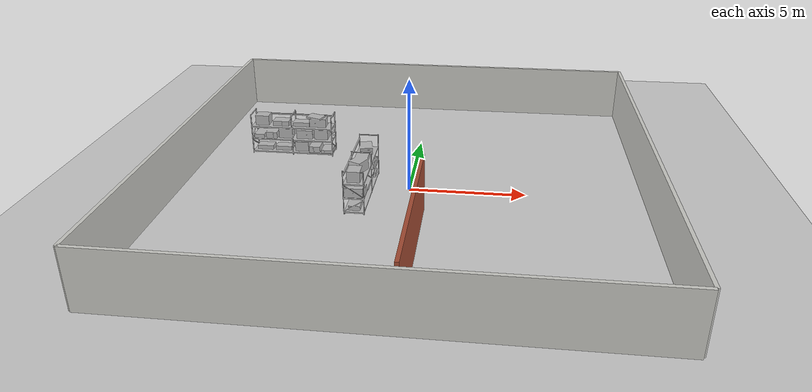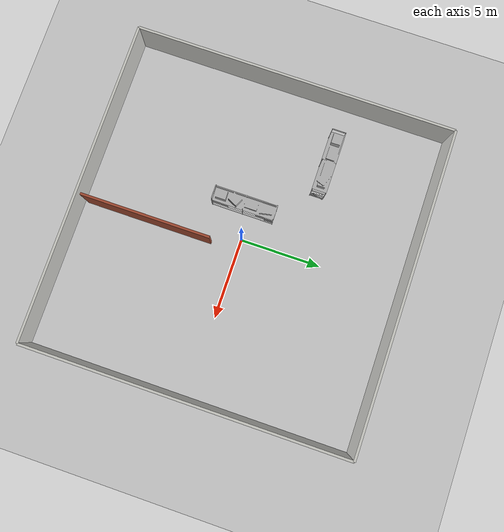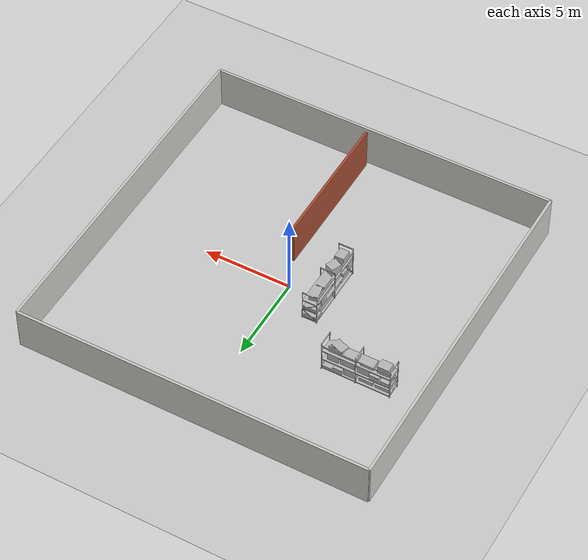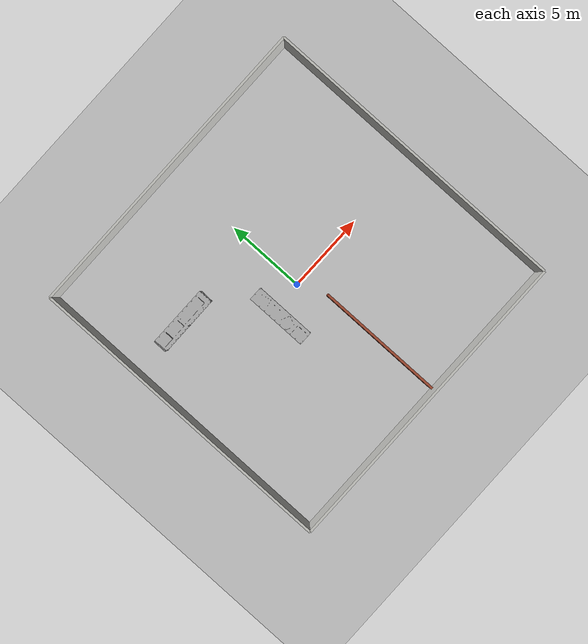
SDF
<sdf version="1.7">
 <world name="default">
  <light name="sun" type="directional">
   <pose>0 0 10 0 -0 0</pose>
   <diffuse>0.8 0.8 0.8 1</diffuse>
   <specular>0.2 0.2 0.2 1</specular>
   <attenuation>
    <range>1000</range>
    <constant>0.9</constant>
    <linear>0.01</linear>
    <quadratic>0.001</quadratic>
   </attenuation>
   <direction>-0.5 0.1 -0.9</direction>
   <spot><inner_angle>0</inner_angle><outer_angle>0</outer_angle><falloff>0</falloff></spot>
  </light>
  <model name="ground_plane">
   <static>1</static>
   <link name="link">
    <collision name="collision">
     <geometry><plane><normal>0 0 1</normal><size>100 100</size></plane></geometry>
     <surface><friction><ode><mu>100</mu><mu2>50</mu2></ode></friction></surface>
    </collision>
    <visual name="visual">
     <cast_shadows>0</cast_shadows>
     <geometry><plane><normal>0 0 1</normal><size>100 100</size></plane></geometry>
     <material>
      <script><uri>file://media/materials/scripts/gazebo.material</uri><name>Gazebo/Grey</name></script>
     </material>
    </visual>
   </link>
  </model>
  <gravity>0 0 -9.8</gravity>
  <magnetic_field>6e-06 2.3e-05 -4.2e-05</magnetic_field>
  <atmosphere type="adiabatic"/>
  <physics type="ode">
   <max_step_size>0.001</max_step_size>
   <real_time_factor>1</real_time_factor>
   <real_time_update_rate>1000</real_time_update_rate>
  </physics>
  <scene><ambient>0.4 0.4 0.4 1</ambient><background>0.7 0.7 0.7 1</background><shadows>1</shadows></scene>
  <spherical_coordinates>
   <surface_model>EARTH_WGS84</surface_model>
   <latitude_deg>0</latitude_deg>
   <longitude_deg>0</longitude_deg>
   <elevation>0</elevation>
   <heading_deg>0</heading_deg>
  </spherical_coordinates>
  <model name="single_wall">
   <pose>-10 0 0 0 -0 1.57</pose>
   <link name="wall_link">
    <collision name="wall_collision">
     <geometry><box><size>20 0.15 2.5</size></box></geometry>
     <pose>0 0 1.25 0 -0 0</pose>
    </collision>
    <visual name="wall_visual">
     <pose>0 0 1.25 0 -0 0</pose>
     <geometry><box><size>20 0.15 2.5</size></box></geometry>
     <material>
      <script><uri>file://media/materials/scripts/gazebo.material</uri><name>Gazebo/CeilingTiled</name></script>
     </material>
    </visual>
   </link>
   <static>1</static>
  </model>
  <model name="single_wall_clone">
   <pose>0 10 0 0 -0 0</pose>
   <link name="wall_link">
    <collision name="wall_collision">
     <geometry><box><size>20 0.15 2.5</size></box></geometry>
     <pose>0 0 1.25 0 -0 0</pose>
    </collision>
    <visual name="wall_visual">
     <pose>0 0 1.25 0 -0 0</pose>
     <geometry><box><size>20 0.15 2.5</size></box></geometry>
     <material>
      <script><uri>file://media/materials/scripts/gazebo.material</uri><name>Gazebo/CeilingTiled</name></script>
     </material>
    </visual>
   </link>
   <static>1</static>
  </model>
  <model name="single_wall_clone_0">
   <pose>0 -10 0 0 -0 3.14</pose>
   <link name="wall_link">
    <collision name="wall_collision">
     <geometry><box><size>20 0.15 2.5</size></box></geometry>
     <pose>0 0 1.25 0 -0 0</pose>
    </collision>
    <visual name="wall_visual">
     <pose>0 0 1.25 0 -0 0</pose>
     <geometry><box><size>20 0.15 2.5</size></box></geometry>
     <material>
      <script><uri>file://media/materials/scripts/gazebo.material</uri><name>Gazebo/CeilingTiled</name></script>
     </material>
    </visual>
   </link>
   <static>1</static>
  </model>
  <model name="single_wall_clone_1">
   <pose>10 0 0 0 0 -1.57</pose>
   <link name="wall_link">
    <collision name="wall_collision">
     <geometry><box><size>20 0.15 2.5</size></box></geometry>
     <pose>0 0 1.25 0 -0 0</pose>
    </collision>
    <visual name="wall_visual">
     <pose>0 0 1.25 0 -0 0</pose>
     <geometry><box><size>20 0.15 2.5</size></box></geometry>
     <material>
      <script><uri>file://media/materials/scripts/gazebo.material</uri><name>Gazebo/CeilingTiled</name></script>
     </material>
    </visual>
   </link>
   <static>1</static>
  </model>
  <model name="single_wall_1">
   <pose>0.7388 -5.70207 0 0 0 -1.57</pose>
   <link name="wall_link">
    <collision name="wall_collision">
     <geometry><box><size>8 0.15 2.5</size></box></geometry>
     <pose>0 0 1.25 0 -0 0</pose>
    </collision>
    <visual name="wall_visual">
     <pose>0 0 1.25 0 -0 0</pose>
     <geometry><box><size>8 0.15 2.5</size></box></geometry>
     <material>
      <script><uri>file://media/materials/scripts/gazebo.material</uri><name>Gazebo/Bricks</name></script>
     </material>
    </visual>
   </link>
   <static>1</static>
  </model>
  <include>
   <uri>model://aws_robomaker_warehouse_ShelfE_01</uri>
   <name>aws_robomaker_warehouse_ShelfE_01</name>
   <pose>-6 3.5 -0.7 0 -0 0</pose>
  </include>
  <include>
   <uri>model://aws_robomaker_warehouse_ShelfD_01</uri>
   <name>aws_robomaker_warehouse_ShelfD_01</name>
   <pose>-2 -0.5 -0.7 0 -0 1.57</pose>
  </include>
 </world>
</sdf>

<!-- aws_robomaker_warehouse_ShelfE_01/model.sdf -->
<sdf version="1.6">
  <model name="aws_robomaker_warehouse_ShelfE_01">
    <link name="link">
      <inertial>
        <mass>30</mass>
        <inertia>
          <ixx>907.144</ixx>
          <ixy>0</ixy>
          <ixz>0</ixz>
          <iyy>104.950</iyy>
          <iyz>0</iyz>
          <izz>824.248</izz>
        </inertia>
      </inertial>
      <collision name="collision">
        <geometry>
          <mesh>
            <uri>model://aws_robomaker_warehouse_ShelfE_01/meshes/aws_robomaker_warehouse_ShelfE_01_collision.DAE</uri>
            <scale>1 1 1</scale>
          </mesh>
        </geometry>
		<surface>
          <friction>
            <ode>
              <mu>0.2</mu>
              <mu2>0.2</mu2>
              <fdir1>0 0 0</fdir1>
              <slip1>0</slip1>
              <slip2>0</slip2>
            </ode>
        </friction>
          </surface>
      </collision>
      <visual name="visual">
	    <geometry>
          <mesh>
            <uri>model://aws_robomaker_warehouse_ShelfE_01/meshes/aws_robomaker_warehouse_ShelfE_01_visual.DAE</uri>
          </mesh>
        </geometry>
      <meta> <layer> 1 </layer></meta>
</visual>
    </link>
<static>1</static>
  </model>
</sdf>

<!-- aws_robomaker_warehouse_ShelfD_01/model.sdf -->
<sdf version="1.6">
  <model name="aws_robomaker_warehouse_ShelfD_01">
    <link name="link">
      <inertial>
        <mass>30</mass>
        <inertia>
          <ixx>907.144</ixx>
          <ixy>0</ixy>
          <ixz>0</ixz>
          <iyy>104.950</iyy>
          <iyz>0</iyz>
          <izz>824.248</izz>
        </inertia>
      </inertial>
      <collision name="collision">
        <geometry>
          <mesh>
            <uri>model://aws_robomaker_warehouse_ShelfD_01/meshes/aws_robomaker_warehouse_ShelfD_01_collision.DAE</uri>
            <scale>1 1 1</scale>
          </mesh>
        </geometry>
		<surface>
          <friction>
            <ode>
              <mu>0.2</mu>
              <mu2>0.2</mu2>
              <fdir1>0 0 0</fdir1>
              <slip1>0</slip1>
              <slip2>0</slip2>
            </ode>
        </friction>
          </surface>
      </collision>
      <visual name="visual">
	    <geometry>
          <mesh>
            <uri>model://aws_robomaker_warehouse_ShelfD_01/meshes/aws_robomaker_warehouse_ShelfD_01_visual.DAE</uri>
          </mesh>
        </geometry>
      <meta> <layer> 1 </layer></meta>
</visual>
    </link>
<static>1</static>
  </model>
</sdf>
